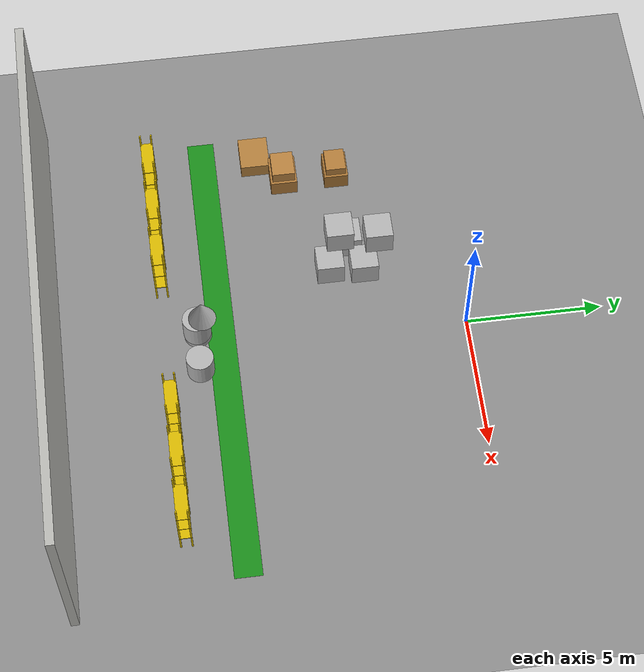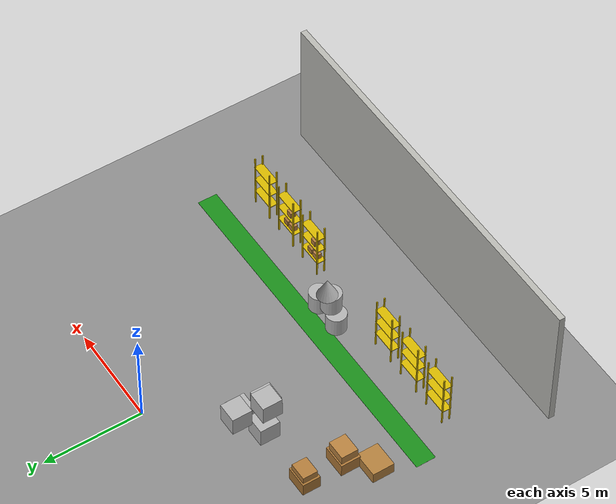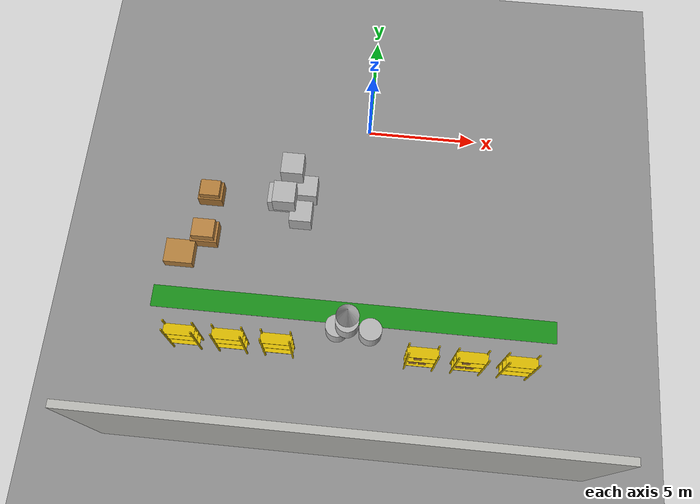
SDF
<sdf version="1.10">
 <world name="default">
  <model name="ground_plane">
   <static>true</static>
   <link name="link">
    <collision name="collision">
     <geometry><plane><normal>0 0 1</normal><size>40 30</size></plane></geometry>
     <surface><friction><ode><mu>0.0000000000000004</mu><mu2>0.0000000000000004</mu2></ode></friction></surface>
    </collision>
    <visual name="visual">
     <geometry><plane><normal>0 0 1</normal><size>20 30</size></plane></geometry>
     <material>
      <ambient>0.550000012 0.550000012 0.550000012 1</ambient>
      <diffuse>0.550000012 0.550000012 0.550000012 1</diffuse>
      <specular>0.100000001 0.100000001 0.100000001 1</specular>
     </material>
    </visual>
    <inertial>
     <mass>1</mass>
     <inertia><ixx>1</ixx><ixy>0</ixy><ixz>0</ixz><iyy>1</iyy><iyz>0</iyz><izz>1</izz></inertia>
    </inertial>
   </link>
  </model>
  <model name="wall_left">
   <static>true</static>
   <pose>0 -15 3.5 0 0 0</pose>
   <link name="link">
    <collision name="c"><geometry><box><size>20 0.29999999999999999 7</size></box></geometry></collision>
    <visual name="v">
     <geometry><box><size>20 0.29999999999999999 7</size></box></geometry>
     <material>
      <ambient>0.720000029 0.720000029 0.699999988 1</ambient>
      <diffuse>0.720000029 0.720000029 0.699999988 1</diffuse>
     </material>
    </visual>
    <inertial>
     <mass>1</mass>
     <inertia><ixx>1</ixx><ixy>0</ixy><ixz>0</ixz><iyy>1</iyy><iyz>0</iyz><izz>1</izz></inertia>
    </inertial>
   </link>
  </model>
  <model name="lane_left">
   <static>true</static>
   <pose>0 -9 0.002 0 0 0</pose>
   <link name="link">
    <visual name="v">
     <geometry><box><size>18 1 0.0050000000000000001</size></box></geometry>
     <material>
      <ambient>0.100000001 0.550000012 0.100000001 1</ambient>
      <diffuse>0.100000001 0.550000012 0.100000001 1</diffuse>
     </material>
    </visual>
    <inertial>
     <mass>1</mass>
     <inertia><ixx>1</ixx><ixy>0</ixy><ixz>0</ixz><iyy>1</iyy><iyz>0</iyz><izz>1</izz></inertia>
    </inertial>
   </link>
  </model>
  <model name="shelf_A1">
   <static>true</static>
   <pose>3 -11 0 0 0 0</pose>
   <link name="link">
    <visual name="post_fl">
     <pose>-0.59999999999999998 -0.20000000000000001 1.5 0 0 0</pose>
     <geometry><box><size>0.059999999999999998 0.059999999999999998 3</size></box></geometry>
     <material>
      <ambient>0.850000024 0.720000029 0 1</ambient>
      <diffuse>0.850000024 0.720000029 0 1</diffuse>
     </material>
    </visual>
    <visual name="post_fr">
     <pose>0.59999999999999998 -0.20000000000000001 1.5 0 0 0</pose>
     <geometry><box><size>0.059999999999999998 0.059999999999999998 3</size></box></geometry>
     <material>
      <ambient>0.850000024 0.720000029 0 1</ambient>
      <diffuse>0.850000024 0.720000029 0 1</diffuse>
     </material>
    </visual>
    <visual name="post_bl">
     <pose>-0.59999999999999998 0.20000000000000001 1.5 0 0 0</pose>
     <geometry><box><size>0.059999999999999998 0.059999999999999998 3</size></box></geometry>
     <material>
      <ambient>0.850000024 0.720000029 0 1</ambient>
      <diffuse>0.850000024 0.720000029 0 1</diffuse>
     </material>
    </visual>
    <visual name="post_br">
     <pose>0.59999999999999998 0.20000000000000001 1.5 0 0 0</pose>
     <geometry><box><size>0.059999999999999998 0.059999999999999998 3</size></box></geometry>
     <material>
      <ambient>0.850000024 0.720000029 0 1</ambient>
      <diffuse>0.850000024 0.720000029 0 1</diffuse>
     </material>
    </visual>
    <visual name="shelf_l1">
     <pose>0 0 0.80000000000000004 0 0 0</pose>
     <geometry><box><size>1.3 0.45000000000000001 0.040000000000000001</size></box></geometry>
     <material>
      <ambient>0.850000024 0.720000029 0 1</ambient>
      <diffuse>0.850000024 0.720000029 0 1</diffuse>
     </material>
    </visual>
    <visual name="shelf_l2">
     <pose>0 0 1.6000000000000001 0 0 0</pose>
     <geometry><box><size>1.3 0.45000000000000001 0.040000000000000001</size></box></geometry>
     <material>
      <ambient>0.850000024 0.720000029 0 1</ambient>
      <diffuse>0.850000024 0.720000029 0 1</diffuse>
     </material>
    </visual>
    <visual name="shelf_l3">
     <pose>0 0 2.3999999999999999 0 0 0</pose>
     <geometry><box><size>1.3 0.45000000000000001 0.040000000000000001</size></box></geometry>
     <material>
      <ambient>0.850000024 0.720000029 0 1</ambient>
      <diffuse>0.850000024 0.720000029 0 1</diffuse>
     </material>
    </visual>
    <collision name="c">
     <geometry><box><size>1.3 0.5 3</size></box></geometry>
     <pose>0 0 1.5 0 0 0</pose>
    </collision>
    <inertial>
     <mass>1</mass>
     <inertia><ixx>1</ixx><ixy>0</ixy><ixz>0</ixz><iyy>1</iyy><iyz>0</iyz><izz>1</izz></inertia>
    </inertial>
   </link>
  </model>
  <model name="shelf_A2">
   <static>true</static>
   <pose>5 -11 0 0 0 0</pose>
   <link name="link">
    <visual name="post_fl">
     <pose>-0.59999999999999998 -0.20000000000000001 1.5 0 0 0</pose>
     <geometry><box><size>0.059999999999999998 0.059999999999999998 3</size></box></geometry>
     <material>
      <ambient>0.850000024 0.720000029 0 1</ambient>
      <diffuse>0.850000024 0.720000029 0 1</diffuse>
     </material>
    </visual>
    <visual name="post_fr">
     <pose>0.59999999999999998 -0.20000000000000001 1.5 0 0 0</pose>
     <geometry><box><size>0.059999999999999998 0.059999999999999998 3</size></box></geometry>
     <material>
      <ambient>0.850000024 0.720000029 0 1</ambient>
      <diffuse>0.850000024 0.720000029 0 1</diffuse>
     </material>
    </visual>
    <visual name="post_bl">
     <pose>-0.59999999999999998 0.20000000000000001 1.5 0 0 0</pose>
     <geometry><box><size>0.059999999999999998 0.059999999999999998 3</size></box></geometry>
     <material>
      <ambient>0.850000024 0.720000029 0 1</ambient>
      <diffuse>0.850000024 0.720000029 0 1</diffuse>
     </material>
    </visual>
    <visual name="post_br">
     <pose>0.59999999999999998 0.20000000000000001 1.5 0 0 0</pose>
     <geometry><box><size>0.059999999999999998 0.059999999999999998 3</size></box></geometry>
     <material>
      <ambient>0.850000024 0.720000029 0 1</ambient>
      <diffuse>0.850000024 0.720000029 0 1</diffuse>
     </material>
    </visual>
    <visual name="shelf_l1">
     <pose>0 0 0.80000000000000004 0 0 0</pose>
     <geometry><box><size>1.3 0.45000000000000001 0.040000000000000001</size></box></geometry>
     <material>
      <ambient>0.850000024 0.720000029 0 1</ambient>
      <diffuse>0.850000024 0.720000029 0 1</diffuse>
     </material>
    </visual>
    <visual name="shelf_l2">
     <pose>0 0 1.6000000000000001 0 0 0</pose>
     <geometry><box><size>1.3 0.45000000000000001 0.040000000000000001</size></box></geometry>
     <material>
      <ambient>0.850000024 0.720000029 0 1</ambient>
      <diffuse>0.850000024 0.720000029 0 1</diffuse>
     </material>
    </visual>
    <visual name="shelf_l3">
     <pose>0 0 2.3999999999999999 0 0 0</pose>
     <geometry><box><size>1.3 0.45000000000000001 0.040000000000000001</size></box></geometry>
     <material>
      <ambient>0.850000024 0.720000029 0 1</ambient>
      <diffuse>0.850000024 0.720000029 0 1</diffuse>
     </material>
    </visual>
    <collision name="c">
     <geometry><box><size>1.3 0.5 3</size></box></geometry>
     <pose>0 0 1.5 0 0 0</pose>
    </collision>
    <inertial>
     <mass>1</mass>
     <inertia><ixx>1</ixx><ixy>0</ixy><ixz>0</ixz><iyy>1</iyy><iyz>0</iyz><izz>1</izz></inertia>
    </inertial>
   </link>
  </model>
  <model name="shelf_A3">
   <static>true</static>
   <pose>7 -11 0 0 0 0</pose>
   <link name="link">
    <visual name="post_fl">
     <pose>-0.59999999999999998 -0.20000000000000001 1.5 0 0 0</pose>
     <geometry><box><size>0.059999999999999998 0.059999999999999998 3</size></box></geometry>
     <material>
      <ambient>0.850000024 0.720000029 0 1</ambient>
      <diffuse>0.850000024 0.720000029 0 1</diffuse>
     </material>
    </visual>
    <visual name="post_fr">
     <pose>0.59999999999999998 -0.20000000000000001 1.5 0 0 0</pose>
     <geometry><box><size>0.059999999999999998 0.059999999999999998 3</size></box></geometry>
     <material>
      <ambient>0.850000024 0.720000029 0 1</ambient>
      <diffuse>0.850000024 0.720000029 0 1</diffuse>
     </material>
    </visual>
    <visual name="post_bl">
     <pose>-0.59999999999999998 0.20000000000000001 1.5 0 0 0</pose>
     <geometry><box><size>0.059999999999999998 0.059999999999999998 3</size></box></geometry>
     <material>
      <ambient>0.850000024 0.720000029 0 1</ambient>
      <diffuse>0.850000024 0.720000029 0 1</diffuse>
     </material>
    </visual>
    <visual name="post_br">
     <pose>0.59999999999999998 0.20000000000000001 1.5 0 0 0</pose>
     <geometry><box><size>0.059999999999999998 0.059999999999999998 3</size></box></geometry>
     <material>
      <ambient>0.850000024 0.720000029 0 1</ambient>
      <diffuse>0.850000024 0.720000029 0 1</diffuse>
     </material>
    </visual>
    <visual name="shelf_l1">
     <pose>0 0 0.80000000000000004 0 0 0</pose>
     <geometry><box><size>1.3 0.45000000000000001 0.040000000000000001</size></box></geometry>
     <material>
      <ambient>0.850000024 0.720000029 0 1</ambient>
      <diffuse>0.850000024 0.720000029 0 1</diffuse>
     </material>
    </visual>
    <visual name="shelf_l2">
     <pose>0 0 1.6000000000000001 0 0 0</pose>
     <geometry><box><size>1.3 0.45000000000000001 0.040000000000000001</size></box></geometry>
     <material>
      <ambient>0.850000024 0.720000029 0 1</ambient>
      <diffuse>0.850000024 0.720000029 0 1</diffuse>
     </material>
    </visual>
    <visual name="shelf_l3">
     <pose>0 0 2.3999999999999999 0 0 0</pose>
     <geometry><box><size>1.3 0.45000000000000001 0.040000000000000001</size></box></geometry>
     <material>
      <ambient>0.850000024 0.720000029 0 1</ambient>
      <diffuse>0.850000024 0.720000029 0 1</diffuse>
     </material>
    </visual>
    <collision name="c">
     <geometry><box><size>1.3 0.5 3</size></box></geometry>
     <pose>0 0 1.5 0 0 0</pose>
    </collision>
    <inertial>
     <mass>1</mass>
     <inertia><ixx>1</ixx><ixy>0</ixy><ixz>0</ixz><iyy>1</iyy><iyz>0</iyz><izz>1</izz></inertia>
    </inertial>
   </link>
  </model>
  <model name="shelf_C1">
   <static>true</static>
   <pose>-3 -11 0 0 0 0</pose>
   <link name="link">
    <visual name="post_fl">
     <pose>-0.59999999999999998 -0.20000000000000001 1.5 0 0 0</pose>
     <geometry><box><size>0.059999999999999998 0.059999999999999998 3</size></box></geometry>
     <material>
      <ambient>0.850000024 0.720000029 0 1</ambient>
      <diffuse>0.850000024 0.720000029 0 1</diffuse>
     </material>
    </visual>
    <visual name="post_fr">
     <pose>0.59999999999999998 -0.20000000000000001 1.5 0 0 0</pose>
     <geometry><box><size>0.059999999999999998 0.059999999999999998 3</size></box></geometry>
     <material>
      <ambient>0.850000024 0.720000029 0 1</ambient>
      <diffuse>0.850000024 0.720000029 0 1</diffuse>
     </material>
    </visual>
    <visual name="post_bl">
     <pose>-0.59999999999999998 0.20000000000000001 1.5 0 0 0</pose>
     <geometry><box><size>0.059999999999999998 0.059999999999999998 3</size></box></geometry>
     <material>
      <ambient>0.850000024 0.720000029 0 1</ambient>
      <diffuse>0.850000024 0.720000029 0 1</diffuse>
     </material>
    </visual>
    <visual name="post_br">
     <pose>0.59999999999999998 0.20000000000000001 1.5 0 0 0</pose>
     <geometry><box><size>0.059999999999999998 0.059999999999999998 3</size></box></geometry>
     <material>
      <ambient>0.850000024 0.720000029 0 1</ambient>
      <diffuse>0.850000024 0.720000029 0 1</diffuse>
     </material>
    </visual>
    <visual name="shelf_l1">
     <pose>0 0 0.80000000000000004 0 0 0</pose>
     <geometry><box><size>1.3 0.45000000000000001 0.040000000000000001</size></box></geometry>
     <material>
      <ambient>0.850000024 0.720000029 0 1</ambient>
      <diffuse>0.850000024 0.720000029 0 1</diffuse>
     </material>
    </visual>
    <visual name="shelf_l2">
     <pose>0 0 1.6000000000000001 0 0 0</pose>
     <geometry><box><size>1.3 0.45000000000000001 0.040000000000000001</size></box></geometry>
     <material>
      <ambient>0.850000024 0.720000029 0 1</ambient>
      <diffuse>0.850000024 0.720000029 0 1</diffuse>
     </material>
    </visual>
    <visual name="shelf_l3">
     <pose>0 0 2.3999999999999999 0 0 0</pose>
     <geometry><box><size>1.3 0.45000000000000001 0.040000000000000001</size></box></geometry>
     <material>
      <ambient>0.850000024 0.720000029 0 1</ambient>
      <diffuse>0.850000024 0.720000029 0 1</diffuse>
     </material>
    </visual>
    <collision name="c">
     <geometry><box><size>1.3 0.5 3</size></box></geometry>
     <pose>0 0 1.5 0 0 0</pose>
    </collision>
    <inertial>
     <mass>1</mass>
     <inertia><ixx>1</ixx><ixy>0</ixy><ixz>0</ixz><iyy>1</iyy><iyz>0</iyz><izz>1</izz></inertia>
    </inertial>
   </link>
  </model>
  <model name="shelf_C2">
   <static>true</static>
   <pose>-5 -11 0 0 0 0</pose>
   <link name="link">
    <visual name="post_fl">
     <pose>-0.59999999999999998 -0.20000000000000001 1.5 0 0 0</pose>
     <geometry><box><size>0.059999999999999998 0.059999999999999998 3</size></box></geometry>
     <material>
      <ambient>0.850000024 0.720000029 0 1</ambient>
      <diffuse>0.850000024 0.720000029 0 1</diffuse>
     </material>
    </visual>
    <visual name="post_fr">
     <pose>0.59999999999999998 -0.20000000000000001 1.5 0 0 0</pose>
     <geometry><box><size>0.059999999999999998 0.059999999999999998 3</size></box></geometry>
     <material>
      <ambient>0.850000024 0.720000029 0 1</ambient>
      <diffuse>0.850000024 0.720000029 0 1</diffuse>
     </material>
    </visual>
    <visual name="post_bl">
     <pose>-0.59999999999999998 0.20000000000000001 1.5 0 0 0</pose>
     <geometry><box><size>0.059999999999999998 0.059999999999999998 3</size></box></geometry>
     <material>
      <ambient>0.850000024 0.720000029 0 1</ambient>
      <diffuse>0.850000024 0.720000029 0 1</diffuse>
     </material>
    </visual>
    <visual name="post_br">
     <pose>0.59999999999999998 0.20000000000000001 1.5 0 0 0</pose>
     <geometry><box><size>0.059999999999999998 0.059999999999999998 3</size></box></geometry>
     <material>
      <ambient>0.850000024 0.720000029 0 1</ambient>
      <diffuse>0.850000024 0.720000029 0 1</diffuse>
     </material>
    </visual>
    <visual name="shelf_l1">
     <pose>0 0 0.80000000000000004 0 0 0</pose>
     <geometry><box><size>1.3 0.45000000000000001 0.040000000000000001</size></box></geometry>
     <material>
      <ambient>0.850000024 0.720000029 0 1</ambient>
      <diffuse>0.850000024 0.720000029 0 1</diffuse>
     </material>
    </visual>
    <visual name="shelf_l2">
     <pose>0 0 1.6000000000000001 0 0 0</pose>
     <geometry><box><size>1.3 0.45000000000000001 0.040000000000000001</size></box></geometry>
     <material>
      <ambient>0.850000024 0.720000029 0 1</ambient>
      <diffuse>0.850000024 0.720000029 0 1</diffuse>
     </material>
    </visual>
    <visual name="shelf_l3">
     <pose>0 0 2.3999999999999999 0 0 0</pose>
     <geometry><box><size>1.3 0.45000000000000001 0.040000000000000001</size></box></geometry>
     <material>
      <ambient>0.850000024 0.720000029 0 1</ambient>
      <diffuse>0.850000024 0.720000029 0 1</diffuse>
     </material>
    </visual>
    <collision name="c">
     <geometry><box><size>1.3 0.5 3</size></box></geometry>
     <pose>0 0 1.5 0 0 0</pose>
    </collision>
    <inertial>
     <mass>1</mass>
     <inertia><ixx>1</ixx><ixy>0</ixy><ixz>0</ixz><iyy>1</iyy><iyz>0</iyz><izz>1</izz></inertia>
    </inertial>
   </link>
  </model>
  <model name="shelf_C3">
   <static>true</static>
   <pose>-7 -11 0 0 0 0</pose>
   <link name="link">
    <visual name="post_fl">
     <pose>-0.59999999999999998 -0.20000000000000001 1.5 0 0 0</pose>
     <geometry><box><size>0.059999999999999998 0.059999999999999998 3</size></box></geometry>
     <material>
      <ambient>0.850000024 0.720000029 0 1</ambient>
      <diffuse>0.850000024 0.720000029 0 1</diffuse>
     </material>
    </visual>
    <visual name="post_fr">
     <pose>0.59999999999999998 -0.20000000000000001 1.5 0 0 0</pose>
     <geometry><box><size>0.059999999999999998 0.059999999999999998 3</size></box></geometry>
     <material>
      <ambient>0.850000024 0.720000029 0 1</ambient>
      <diffuse>0.850000024 0.720000029 0 1</diffuse>
     </material>
    </visual>
    <visual name="post_bl">
     <pose>-0.59999999999999998 0.20000000000000001 1.5 0 0 0</pose>
     <geometry><box><size>0.059999999999999998 0.059999999999999998 3</size></box></geometry>
     <material>
      <ambient>0.850000024 0.720000029 0 1</ambient>
      <diffuse>0.850000024 0.720000029 0 1</diffuse>
     </material>
    </visual>
    <visual name="post_br">
     <pose>0.59999999999999998 0.20000000000000001 1.5 0 0 0</pose>
     <geometry><box><size>0.059999999999999998 0.059999999999999998 3</size></box></geometry>
     <material>
      <ambient>0.850000024 0.720000029 0 1</ambient>
      <diffuse>0.850000024 0.720000029 0 1</diffuse>
     </material>
    </visual>
    <visual name="shelf_l1">
     <pose>0 0 0.80000000000000004 0 0 0</pose>
     <geometry><box><size>1.3 0.45000000000000001 0.040000000000000001</size></box></geometry>
     <material>
      <ambient>0.850000024 0.720000029 0 1</ambient>
      <diffuse>0.850000024 0.720000029 0 1</diffuse>
     </material>
    </visual>
    <visual name="shelf_l2">
     <pose>0 0 1.6000000000000001 0 0 0</pose>
     <geometry><box><size>1.3 0.45000000000000001 0.040000000000000001</size></box></geometry>
     <material>
      <ambient>0.850000024 0.720000029 0 1</ambient>
      <diffuse>0.850000024 0.720000029 0 1</diffuse>
     </material>
    </visual>
    <visual name="shelf_l3">
     <pose>0 0 2.3999999999999999 0 0 0</pose>
     <geometry><box><size>1.3 0.45000000000000001 0.040000000000000001</size></box></geometry>
     <material>
      <ambient>0.850000024 0.720000029 0 1</ambient>
      <diffuse>0.850000024 0.720000029 0 1</diffuse>
     </material>
    </visual>
    <collision name="c">
     <geometry><box><size>1.3 0.5 3</size></box></geometry>
     <pose>0 0 1.5 0 0 0</pose>
    </collision>
    <inertial>
     <mass>1</mass>
     <inertia><ixx>1</ixx><ixy>0</ixy><ixz>0</ixz><iyy>1</iyy><iyz>0</iyz><izz>1</izz></inertia>
    </inertial>
   </link>
  </model>
  <model name="box_A1_l1_a">
   <static>true</static>
   <pose>2.7000000000000002 -11 0.96999999999999997 0 0 0</pose>
   <link name="link">
    <visual name="v">
     <geometry><box><size>0.32000000000000001 0.28000000000000003 0.29999999999999999</size></box></geometry>
     <material><ambient>0.720000029 0.5 0.25 1</ambient><diffuse>0.720000029 0.5 0.25 1</diffuse></material>
    </visual>
    <collision name="c">
     <geometry><box><size>0.32000000000000001 0.28000000000000003 0.29999999999999999</size></box></geometry>
    </collision>
    <inertial>
     <mass>1</mass>
     <inertia><ixx>1</ixx><ixy>0</ixy><ixz>0</ixz><iyy>1</iyy><iyz>0</iyz><izz>1</izz></inertia>
    </inertial>
   </link>
  </model>
  <model name="box_A1_l1_b">
   <static>true</static>
   <pose>3.1000000000000001 -11 0.96999999999999997 0 0 0</pose>
   <link name="link">
    <visual name="v">
     <geometry><box><size>0.32000000000000001 0.28000000000000003 0.29999999999999999</size></box></geometry>
     <material>
      <ambient>0.680000007 0.479999989 0.219999999 1</ambient>
      <diffuse>0.680000007 0.479999989 0.219999999 1</diffuse>
     </material>
    </visual>
    <collision name="c">
     <geometry><box><size>0.32000000000000001 0.28000000000000003 0.29999999999999999</size></box></geometry>
    </collision>
    <inertial>
     <mass>1</mass>
     <inertia><ixx>1</ixx><ixy>0</ixy><ixz>0</ixz><iyy>1</iyy><iyz>0</iyz><izz>1</izz></inertia>
    </inertial>
   </link>
  </model>
  <model name="box_A1_l2_a">
   <static>true</static>
   <pose>2.8500000000000001 -11 1.77 0 0 0</pose>
   <link name="link">
    <visual name="v">
     <geometry><box><size>0.32000000000000001 0.28000000000000003 0.29999999999999999</size></box></geometry>
     <material>
      <ambient>0.699999988 0.49000001 0.230000004 1</ambient>
      <diffuse>0.699999988 0.49000001 0.230000004 1</diffuse>
     </material>
    </visual>
    <collision name="c">
     <geometry><box><size>0.32000000000000001 0.28000000000000003 0.29999999999999999</size></box></geometry>
    </collision>
    <inertial>
     <mass>1</mass>
     <inertia><ixx>1</ixx><ixy>0</ixy><ixz>0</ixz><iyy>1</iyy><iyz>0</iyz><izz>1</izz></inertia>
    </inertial>
   </link>
  </model>
  <model name="box_A2_l1_a">
   <static>true</static>
   <pose>4.7000000000000002 -11 0.96999999999999997 0 0 0</pose>
   <link name="link">
    <visual name="v">
     <geometry><box><size>0.32000000000000001 0.28000000000000003 0.29999999999999999</size></box></geometry>
     <material><ambient>0.720000029 0.5 0.25 1</ambient><diffuse>0.720000029 0.5 0.25 1</diffuse></material>
    </visual>
    <collision name="c">
     <geometry><box><size>0.32000000000000001 0.28000000000000003 0.29999999999999999</size></box></geometry>
    </collision>
    <inertial>
     <mass>1</mass>
     <inertia><ixx>1</ixx><ixy>0</ixy><ixz>0</ixz><iyy>1</iyy><iyz>0</iyz><izz>1</izz></inertia>
    </inertial>
   </link>
  </model>
  <model name="box_A2_l1_b">
   <static>true</static>
   <pose>5.0999999999999996 -11 0.96999999999999997 0 0 0</pose>
   <link name="link">
    <visual name="v">
     <geometry><box><size>0.32000000000000001 0.28000000000000003 0.29999999999999999</size></box></geometry>
     <material>
      <ambient>0.660000026 0.460000008 0.209999993 1</ambient>
      <diffuse>0.660000026 0.460000008 0.209999993 1</diffuse>
     </material>
    </visual>
    <collision name="c">
     <geometry><box><size>0.32000000000000001 0.28000000000000003 0.29999999999999999</size></box></geometry>
    </collision>
    <inertial>
     <mass>1</mass>
     <inertia><ixx>1</ixx><ixy>0</ixy><ixz>0</ixz><iyy>1</iyy><iyz>0</iyz><izz>1</izz></inertia>
    </inertial>
   </link>
  </model>
  <model name="box_A2_l2_a">
   <static>true</static>
   <pose>4.8499999999999996 -11 1.77 0 0 0</pose>
   <link name="link">
    <visual name="v">
     <geometry><box><size>0.32000000000000001 0.28000000000000003 0.29999999999999999</size></box></geometry>
     <material>
      <ambient>0.699999988 0.49000001 0.230000004 1</ambient>
      <diffuse>0.699999988 0.49000001 0.230000004 1</diffuse>
     </material>
    </visual>
    <collision name="c">
     <geometry><box><size>0.32000000000000001 0.28000000000000003 0.29999999999999999</size></box></geometry>
    </collision>
    <inertial>
     <mass>1</mass>
     <inertia><ixx>1</ixx><ixy>0</ixy><ixz>0</ixz><iyy>1</iyy><iyz>0</iyz><izz>1</izz></inertia>
    </inertial>
   </link>
  </model>
  <model name="pallet_stack_1">
   <static>true</static>
   <pose>-7 -6 0.34999999999999998 0 0 0</pose>
   <link name="link">
    <visual name="v">
     <geometry><box><size>1.2 1 0.69999999999999996</size></box></geometry>
     <material>
      <ambient>0.680000007 0.469999999 0.219999999 1</ambient>
      <diffuse>0.680000007 0.469999999 0.219999999 1</diffuse>
     </material>
    </visual>
    <collision name="c"><geometry><box><size>1.2 1 0.69999999999999996</size></box></geometry></collision>
    <inertial>
     <mass>1</mass>
     <inertia><ixx>1</ixx><ixy>0</ixy><ixz>0</ixz><iyy>1</iyy><iyz>0</iyz><izz>1</izz></inertia>
    </inertial>
   </link>
  </model>
  <model name="pallet_stack_1b">
   <static>true</static>
   <pose>-7 -6 0.90000000000000002 0 0 0</pose>
   <link name="link">
    <visual name="v">
     <geometry><box><size>1 0.84999999999999998 0.5</size></box></geometry>
     <material>
      <ambient>0.720000029 0.50999999 0.25 1</ambient>
      <diffuse>0.720000029 0.50999999 0.25 1</diffuse>
     </material>
    </visual>
    <collision name="c"><geometry><box><size>1 0.84999999999999998 0.5</size></box></geometry></collision>
    <inertial>
     <mass>1</mass>
     <inertia><ixx>1</ixx><ixy>0</ixy><ixz>0</ixz><iyy>1</iyy><iyz>0</iyz><izz>1</izz></inertia>
    </inertial>
   </link>
  </model>
  <model name="pallet_stack_2">
   <static>true</static>
   <pose>-7 -4 0.34999999999999998 0 0 0</pose>
   <link name="link">
    <visual name="v">
     <geometry><box><size>1.1000000000000001 0.90000000000000002 0.69999999999999996</size></box></geometry>
     <material>
      <ambient>0.649999976 0.449999988 0.200000003 1</ambient>
      <diffuse>0.649999976 0.449999988 0.200000003 1</diffuse>
     </material>
    </visual>
    <collision name="c">
     <geometry><box><size>1.1000000000000001 0.90000000000000002 0.69999999999999996</size></box></geometry>
    </collision>
    <inertial>
     <mass>1</mass>
     <inertia><ixx>1</ixx><ixy>0</ixy><ixz>0</ixz><iyy>1</iyy><iyz>0</iyz><izz>1</izz></inertia>
    </inertial>
   </link>
  </model>
  <model name="pallet_stack_2b">
   <static>true</static>
   <pose>-7 -4 0.84999999999999998 0 0 0</pose>
   <link name="link">
    <visual name="v">
     <geometry><box><size>0.90000000000000002 0.75 0.40000000000000002</size></box></geometry>
     <material>
      <ambient>0.699999988 0.49000001 0.230000004 1</ambient>
      <diffuse>0.699999988 0.49000001 0.230000004 1</diffuse>
     </material>
    </visual>
    <collision name="c">
     <geometry><box><size>0.90000000000000002 0.75 0.40000000000000002</size></box></geometry>
    </collision>
    <inertial>
     <mass>1</mass>
     <inertia><ixx>1</ixx><ixy>0</ixy><ixz>0</ixz><iyy>1</iyy><iyz>0</iyz><izz>1</izz></inertia>
    </inertial>
   </link>
  </model>
  <model name="pallet_stack_3">
   <static>true</static>
   <pose>-8 -7 0.29999999999999999 0 0 0</pose>
   <link name="link">
    <visual name="v">
     <geometry><box><size>1.3 1.1000000000000001 0.59999999999999998</size></box></geometry>
     <material>
      <ambient>0.699999988 0.5 0.239999995 1</ambient>
      <diffuse>0.699999988 0.5 0.239999995 1</diffuse>
     </material>
    </visual>
    <collision name="c">
     <geometry><box><size>1.3 1.1000000000000001 0.59999999999999998</size></box></geometry>
    </collision>
    <inertial>
     <mass>1</mass>
     <inertia><ixx>1</ixx><ixy>0</ixy><ixz>0</ixz><iyy>1</iyy><iyz>0</iyz><izz>1</izz></inertia>
    </inertial>
   </link>
  </model>
  <model name="box_9">
   <pose>-2.6402783344419949 -3.4699204170537432 0.49999998721237721 9.198443818173148e-09 -3.8257403336569292e-09 -2.5798938844765733e-06</pose>
   <link name="box_link">
    <inertial>
     <inertia><ixx>0.16666</ixx><ixy>0</ixy><ixz>0</ixz><iyy>0.16666</iyy><iyz>0</iyz><izz>0.16666</izz></inertia>
     <mass>1</mass>
    </inertial>
    <collision name="box_collision"><geometry><box><size>1 1 1</size></box></geometry></collision>
    <visual name="box_visual">
     <geometry><box><size>1 1 1</size></box></geometry>
     <material>
      <ambient>0.300000012 0.300000012 0.300000012 1</ambient>
      <diffuse>0.699999988 0.699999988 0.699999988 1</diffuse>
      <specular>1 1 1 1</specular>
     </material>
    </visual>
   </link>
   <static>false</static>
  </model>
  <model name="box_11">
   <pose>-3.834794245678431 -3.94429072093107 0.49999999990199806 6.2287739151293738e-22 9.3279666454713669e-22 -3.6315533669320137e-22</pose>
   <link name="box_link">
    <inertial>
     <inertia><ixx>0.16666</ixx><ixy>0</ixy><ixz>0</ixz><iyy>0.16666</iyy><iyz>0</iyz><izz>0.16666</izz></inertia>
     <mass>1</mass>
    </inertial>
    <collision name="box_collision"><geometry><box><size>1 1 1</size></box></geometry></collision>
    <visual name="box_visual">
     <geometry><box><size>1 1 1</size></box></geometry>
     <material>
      <ambient>0.300000012 0.300000012 0.300000012 1</ambient>
      <diffuse>0.699999988 0.699999988 0.699999988 1</diffuse>
      <specular>1 1 1 1</specular>
     </material>
    </visual>
   </link>
   <static>false</static>
  </model>
  <model name="box_12">
   <pose>-2.7623300552368164 -4.7283101081848145 0.49999999990199806 -2.8981425937537822e-22 -1.7274603796827755e-21 -2.1341106054770392e-22</pose>
   <link name="box_link">
    <inertial>
     <inertia><ixx>0.16666</ixx><ixy>0</ixy><ixz>0</ixz><iyy>0.16666</iyy><iyz>0</iyz><izz>0.16666</izz></inertia>
     <mass>1</mass>
    </inertial>
    <collision name="box_collision"><geometry><box><size>1 1 1</size></box></geometry></collision>
    <visual name="box_visual">
     <geometry><box><size>1 1 1</size></box></geometry>
     <material>
      <ambient>0.300000012 0.300000012 0.300000012 1</ambient>
      <diffuse>0.699999988 0.699999988 0.699999988 1</diffuse>
      <specular>1 1 1 1</specular>
     </material>
    </visual>
   </link>
   <static>false</static>
  </model>
  <model name="box_13">
   <pose>-3.2918212468676282 -2.869348665067819 1.4999998875445353 -2.6747077855679485e-09 -1.0441438639641754e-08 -0.00062171829258682548</pose>
   <link name="box_link">
    <inertial>
     <inertia><ixx>0.16666</ixx><ixy>0</ixy><ixz>0</ixz><iyy>0.16666</iyy><iyz>0</iyz><izz>0.16666</izz></inertia>
     <mass>1</mass>
    </inertial>
    <collision name="box_collision"><geometry><box><size>1 1 1</size></box></geometry></collision>
    <visual name="box_visual">
     <geometry><box><size>1 1 1</size></box></geometry>
     <material>
      <ambient>0.300000012 0.300000012 0.300000012 1</ambient>
      <diffuse>0.699999988 0.699999988 0.699999988 1</diffuse>
      <specular>1 1 1 1</specular>
     </material>
    </visual>
   </link>
   <static>false</static>
  </model>
  <model name="box_14">
   <pose>-3.5046200750114425 -4.2878932947683346 1.4999992219613014 5.1018768273715897e-09 -7.5600118116485542e-09 -4.3939816125701884e-09</pose>
   <link name="box_link">
    <inertial>
     <inertia><ixx>0.16666</ixx><ixy>0</ixy><ixz>0</ixz><iyy>0.16666</iyy><iyz>0</iyz><izz>0.16666</izz></inertia>
     <mass>1</mass>
    </inertial>
    <collision name="box_collision"><geometry><box><size>1 1 1</size></box></geometry></collision>
    <visual name="box_visual">
     <geometry><box><size>1 1 1</size></box></geometry>
     <material>
      <ambient>0.300000012 0.300000012 0.300000012 1</ambient>
      <diffuse>0.699999988 0.699999988 0.699999988 1</diffuse>
      <specular>1 1 1 1</specular>
     </material>
    </visual>
   </link>
   <static>false</static>
  </model>
  <model name="cylinder">
   <pose>-0.6272007387393882 -9.848003420014642 0.49999947843157799 5.7435911100332231e-08 7.094940132433111e-07 -0.0081225104568027357</pose>
   <link name="cylinder_link">
    <inertial>
     <inertia>
      <ixx>0.14580000000000001</ixx>
      <ixy>0</ixy>
      <ixz>0</ixz>
      <iyy>0.14580000000000001</iyy>
      <iyz>0</iyz>
      <izz>0.125</izz>
     </inertia>
     <mass>1</mass>
    </inertial>
    <collision name="cylinder_collision">
     <geometry><cylinder><radius>0.5</radius><length>1</length></cylinder></geometry>
    </collision>
    <visual name="cylinder_visual">
     <geometry><cylinder><radius>0.5</radius><length>1</length></cylinder></geometry>
     <material>
      <ambient>0.300000012 0.300000012 0.300000012 1</ambient>
      <diffuse>0.699999988 0.699999988 0.699999988 1</diffuse>
      <specular>1 1 1 1</specular>
     </material>
    </visual>
   </link>
   <static>false</static>
  </model>
  <model name="cylinder_0">
   <pose>-0.19139027239646106 -9.8555636827319546 1.4999999172726888 1.85255955923236e-07 -5.666823077671608e-07 -0.013655699938112597</pose>
   <link name="cylinder_link">
    <inertial>
     <inertia>
      <ixx>0.14580000000000001</ixx>
      <ixy>0</ixy>
      <ixz>0</ixz>
      <iyy>0.14580000000000001</iyy>
      <iyz>0</iyz>
      <izz>0.125</izz>
     </inertia>
     <mass>1</mass>
    </inertial>
    <collision name="cylinder_collision">
     <geometry><cylinder><radius>0.5</radius><length>1</length></cylinder></geometry>
    </collision>
    <visual name="cylinder_visual">
     <geometry><cylinder><radius>0.5</radius><length>1</length></cylinder></geometry>
     <material>
      <ambient>0.300000012 0.300000012 0.300000012 1</ambient>
      <diffuse>0.699999988 0.699999988 0.699999988 1</diffuse>
      <specular>1 1 1 1</specular>
     </material>
    </visual>
   </link>
   <static>false</static>
  </model>
  <model name="cylinder_0_1">
   <pose>0.82457187653022979 -9.8738456774210324 0.49999930996434472 -9.6474458357783178e-09 -8.4140685657436038e-08 -0.013659060664529057</pose>
   <link name="cylinder_link">
    <inertial>
     <inertia>
      <ixx>0.14580000000000001</ixx>
      <ixy>0</ixy>
      <ixz>0</ixz>
      <iyy>0.14580000000000001</iyy>
      <iyz>0</iyz>
      <izz>0.125</izz>
     </inertia>
     <mass>1</mass>
    </inertial>
    <collision name="cylinder_collision">
     <geometry><cylinder><radius>0.5</radius><length>1</length></cylinder></geometry>
    </collision>
    <visual name="cylinder_visual">
     <geometry><cylinder><radius>0.5</radius><length>1</length></cylinder></geometry>
     <material>
      <ambient>0.300000012 0.300000012 0.300000012 1</ambient>
      <diffuse>0.699999988 0.699999988 0.699999988 1</diffuse>
      <specular>1 1 1 1</specular>
     </material>
    </visual>
   </link>
   <static>false</static>
  </model>
  <model name="cone">
   <pose>-0.19083816293117176 -9.6316866100802567 2.4999999504096309 -3.4012091729790954e-08 8.5040264148551729e-08 1.0445823591673079e-10</pose>
   <link name="cone_link">
    <inertial>
     <inertia>
      <ixx>0.074999999999999997</ixx>
      <ixy>0</ixy>
      <ixz>0</ixz>
      <iyy>0.074999999999999997</iyy>
      <iyz>0</iyz>
      <izz>0.074999999999999997</izz>
     </inertia>
     <mass>1</mass>
    </inertial>
    <collision name="cone_collision">
     <geometry><cone><radius>0.5</radius><length>1</length></cone></geometry>
    </collision>
    <visual name="cone_visual">
     <geometry><cone><radius>0.5</radius><length>1</length></cone></geometry>
     <material>
      <ambient>0.300000012 0.300000012 0.300000012 1</ambient>
      <diffuse>0.699999988 0.699999988 0.699999988 1</diffuse>
      <specular>1 1 1 1</specular>
     </material>
    </visual>
   </link>
   <static>false</static>
  </model>
 </world>
</sdf>
